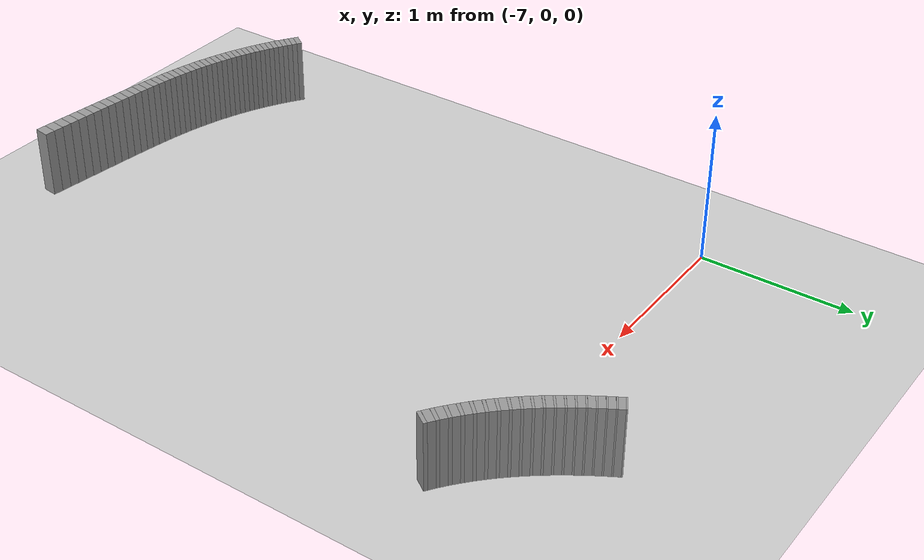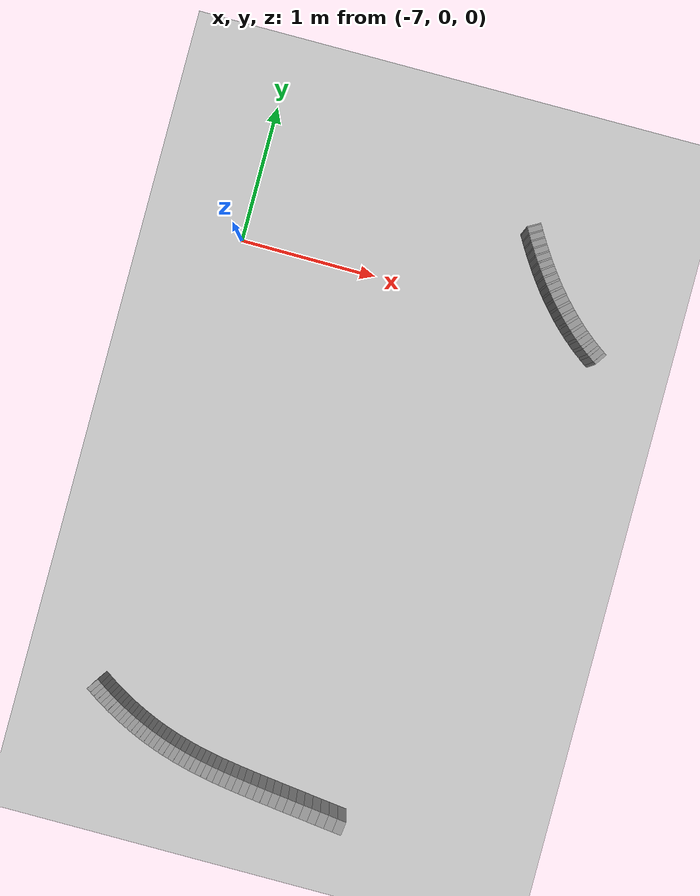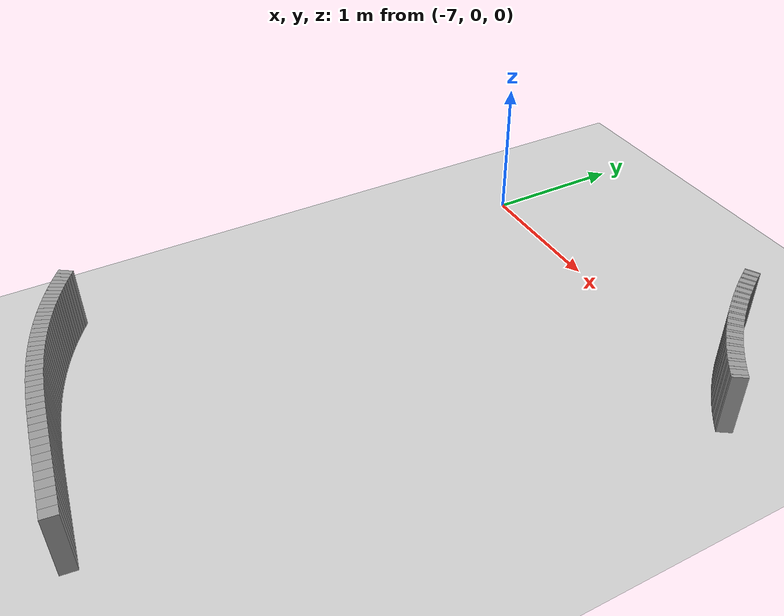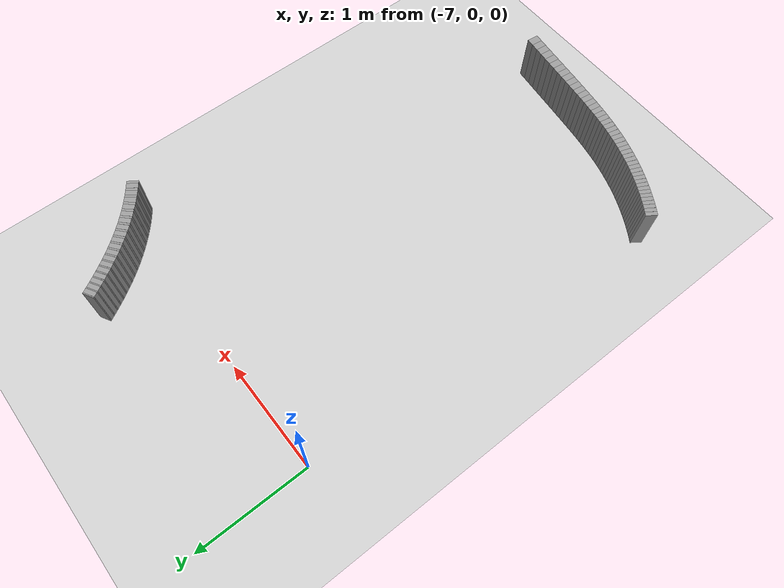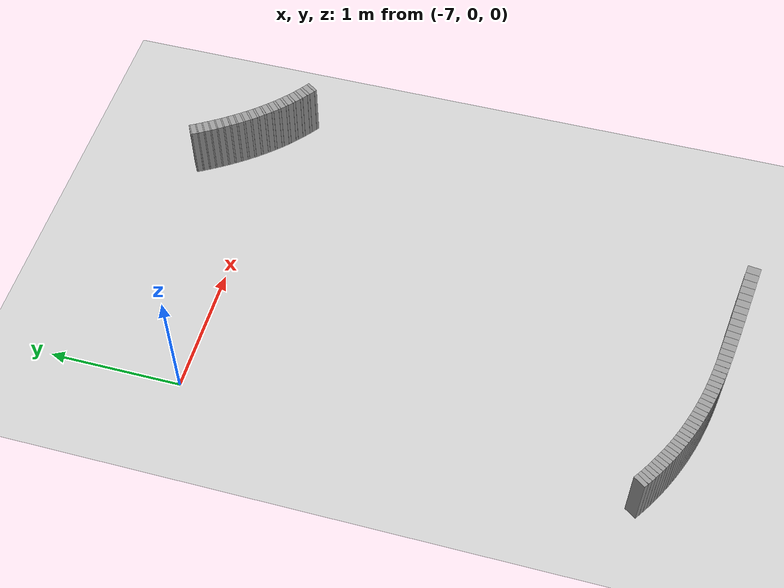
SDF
<sdf version="1.6">
 <world name="default">
  <include><uri>model://ground_plane</uri></include>
  <include><uri>model://sun</uri></include>
  <model name="wall_85_outward">
   <static>true</static>
   <link name="link">
    <collision name="collision">
     <geometry><box><size>0.023241666667469324 0.1 0.45</size></box></geometry>
    </collision>
    <visual name="visual">
     <geometry><box><size>0.023241666667469324 0.1 0.45</size></box></geometry>
     <material>
      <script><uri>file://media/materials/scripts/gazebo.material</uri><name>Gazebo/Gray</name></script>
     </material>
    </visual>
   </link>
   <pose>-4.325595800534499 -0.19284814521639576 0.225 0 0 2.548515227415712</pose>
  </model>
  <model name="wall_86_outward">
   <static>true</static>
   <link name="link">
    <collision name="collision">
     <geometry><box><size>0.04576433966683332 0.1 0.45</size></box></geometry>
    </collision>
    <visual name="visual">
     <geometry><box><size>0.04576433966683332 0.1 0.45</size></box></geometry>
     <material>
      <script><uri>file://media/materials/scripts/gazebo.material</uri><name>Gazebo/Gray</name></script>
     </material>
    </visual>
   </link>
   <pose>-4.353955277947944 -0.17319878109186024 0.225 0 0 2.529145960759117</pose>
  </model>
  <model name="wall_87_outward">
   <static>true</static>
   <link name="link">
    <collision name="collision">
     <geometry><box><size>0.022731138609609344 0.1 0.45</size></box></geometry>
    </collision>
    <visual name="visual">
     <geometry><box><size>0.022731138609609344 0.1 0.45</size></box></geometry>
     <material>
      <script><uri>file://media/materials/scripts/gazebo.material</uri><name>Gazebo/Gray</name></script>
     </material>
    </visual>
   </link>
   <pose>-4.38185284806236 -0.15333575285338413 0.225 0 0 2.5102022122281324</pose>
  </model>
  <model name="wall_88_outward">
   <static>true</static>
   <link name="link">
    <collision name="collision">
     <geometry><box><size>0.04527786720698775 0.1 0.45</size></box></geometry>
    </collision>
    <visual name="visual">
     <geometry><box><size>0.04527786720698775 0.1 0.45</size></box></geometry>
     <material>
      <script><uri>file://media/materials/scripts/gazebo.material</uri><name>Gazebo/Gray</name></script>
     </material>
    </visual>
   </link>
   <pose>-4.409045130077611 -0.13292022734175252 0.225 0 0 2.491258463697148</pose>
  </model>
  <model name="wall_89_outward">
   <static>true</static>
   <link name="link">
    <collision name="collision">
     <geometry><box><size>0.022048548580511543 0.1 0.45</size></box></geometry>
    </collision>
    <visual name="visual">
     <geometry><box><size>0.022048548580511543 0.1 0.45</size></box></geometry>
     <material>
      <script><uri>file://media/materials/scripts/gazebo.material</uri><name>Gazebo/Gray</name></script>
     </material>
    </visual>
   </link>
   <pose>-4.435712934489321 -0.11237867165751814 0.225 0 0 2.472883639236073</pose>
  </model>
  <model name="wall_90_outward">
   <static>true</static>
   <link name="link">
    <collision name="collision">
     <geometry><box><size>0.04482548283133406 0.1 0.45</size></box></geometry>
    </collision>
    <visual name="visual">
     <geometry><box><size>0.04482548283133406 0.1 0.45</size></box></geometry>
     <material>
      <script><uri>file://media/materials/scripts/gazebo.material</uri><name>Gazebo/Gray</name></script>
     </material>
    </visual>
   </link>
   <pose>-4.461690097793536 -0.09132783831870048 0.225 0 0 2.45450881477498</pose>
  </model>
  <model name="wall_91_outward">
   <static>true</static>
   <link name="link">
    <collision name="collision">
     <geometry><box><size>0.02123689167539869 0.1 0.45</size></box></geometry>
    </collision>
    <visual name="visual">
     <geometry><box><size>0.02123689167539869 0.1 0.45</size></box></geometry>
     <material>
      <script><uri>file://media/materials/scripts/gazebo.material</uri><name>Gazebo/Gray</name></script>
     </material>
    </visual>
   </link>
   <pose>-4.48710599499292 -0.07023241328174237 0.225 0 0 2.4368104811154376</pose>
  </model>
  <model name="wall_92_outward">
   <static>true</static>
   <link name="link">
    <collision name="collision">
     <geometry><box><size>0.04439943277898339 0.1 0.45</size></box></geometry>
    </collision>
    <visual name="visual">
     <geometry><box><size>0.04439943277898339 0.1 0.45</size></box></geometry>
     <material>
      <script><uri>file://media/materials/scripts/gazebo.material</uri><name>Gazebo/Gray</name></script>
     </material>
    </visual>
   </link>
   <pose>-4.511848137339372 -0.04867355595675707 0.225 0 0 2.419112147455921</pose>
  </model>
  <model name="wall_93_outward">
   <static>true</static>
   <link name="link">
    <collision name="collision">
     <geometry><box><size>0.020312099191398782 0.1 0.45</size></box></geometry>
    </collision>
    <visual name="visual">
     <geometry><box><size>0.020312099191398782 0.1 0.45</size></box></geometry>
     <material>
      <script><uri>file://media/materials/scripts/gazebo.material</uri><name>Gazebo/Gray</name></script>
     </material>
    </visual>
   </link>
   <pose>-4.536005625602225 -0.027150388191595293 0.225 0 0 2.40218458973138</pose>
  </model>
  <model name="wall_94_outward">
   <static>true</static>
   <link name="link">
    <collision name="collision">
     <geometry><box><size>0.043996923994402394 0.1 0.45</size></box></geometry>
    </collision>
    <visual name="visual">
     <geometry><box><size>0.043996923994402394 0.1 0.45</size></box></geometry>
     <material>
      <script><uri>file://media/materials/scripts/gazebo.material</uri><name>Gazebo/Gray</name></script>
     </material>
    </visual>
   </link>
   <pose>-4.559510305925098 -0.0052100463143549824 0.225 0 0 2.3852570320068183</pose>
  </model>
  <model name="wall_95_outward">
   <static>true</static>
   <link name="link">
    <collision name="collision">
     <geometry><box><size>0.019325154894788227 0.1 0.45</size></box></geometry>
    </collision>
    <visual name="visual">
     <geometry><box><size>0.019325154894788227 0.1 0.45</size></box></geometry>
     <material>
      <script><uri>file://media/materials/scripts/gazebo.material</uri><name>Gazebo/Gray</name></script>
     </material>
    </visual>
   </link>
   <pose>-4.582431440726968 0.016630005585092394 0.225 0 0 2.3691520400761816</pose>
  </model>
  <model name="wall_96_outward">
   <static>true</static>
   <link name="link">
    <collision name="collision">
     <geometry><box><size>0.04361838156934606 0.1 0.45</size></box></geometry>
    </collision>
    <visual name="visual">
     <geometry><box><size>0.04361838156934606 0.1 0.45</size></box></geometry>
     <material>
      <script><uri>file://media/materials/scripts/gazebo.material</uri><name>Gazebo/Gray</name></script>
     </material>
    </visual>
   </link>
   <pose>-4.604724683181958 0.038843264681839657 0.225 0 0 2.3530470481455357</pose>
  </model>
  <model name="wall_97_outward">
   <static>true</static>
   <link name="link">
    <collision name="collision">
     <geometry><box><size>0.018272271444684445 0.1 0.45</size></box></geometry>
    </collision>
    <visual name="visual">
     <geometry><box><size>0.018272271444684445 0.1 0.45</size></box></geometry>
     <material>
      <script><uri>file://media/materials/scripts/gazebo.material</uri><name>Gazebo/Gray</name></script>
     </material>
    </visual>
   </link>
   <pose>-4.6264379290394775 0.06089098533769283 0.225 0 0 2.33781956680005</pose>
  </model>
  <model name="wall_98_outward">
   <static>true</static>
   <link name="link">
    <collision name="collision">
     <geometry><box><size>0.043267030937911295 0.1 0.45</size></box></geometry>
    </collision>
    <visual name="visual">
     <geometry><box><size>0.043267030937911295 0.1 0.45</size></box></geometry>
     <material>
      <script><uri>file://media/materials/scripts/gazebo.material</uri><name>Gazebo/Gray</name></script>
     </material>
    </visual>
   </link>
   <pose>-4.647553006488624 0.08327131397837778 0.225 0 0 2.3225920854545965</pose>
  </model>
  <model name="wall_99_outward">
   <static>true</static>
   <link name="link">
    <collision name="collision">
     <geometry><box><size>0.01719550772552241 0.1 0.45</size></box></geometry>
    </collision>
    <visual name="visual">
     <geometry><box><size>0.01719550772552241 0.1 0.45</size></box></geometry>
     <material>
      <script><uri>file://media/materials/scripts/gazebo.material</uri><name>Gazebo/Gray</name></script>
     </material>
    </visual>
   </link>
   <pose>-4.668108902480096 0.10543765311678435 0.225 0 0 2.308262005238525</pose>
  </model>
  <model name="wall_100_outward">
   <static>true</static>
   <link name="link">
    <collision name="collision">
     <geometry><box><size>0.04294727232576397 0.1 0.45</size></box></geometry>
    </collision>
    <visual name="visual">
     <geometry><box><size>0.04294727232576397 0.1 0.45</size></box></geometry>
     <material>
      <script><uri>file://media/materials/scripts/gazebo.material</uri><name>Gazebo/Gray</name></script>
     </material>
    </visual>
   </link>
   <pose>-4.68810009248911 0.12790102124744768 0.225 0 0 2.293931925022413</pose>
  </model>
  <model name="wall_101_outward">
   <static>true</static>
   <link name="link">
    <collision name="collision">
     <geometry><box><size>0.016104596266052384 0.1 0.45</size></box></geometry>
    </collision>
    <visual name="visual">
     <geometry><box><size>0.016104596266052384 0.1 0.45</size></box></geometry>
     <material>
      <script><uri>file://media/materials/scripts/gazebo.material</uri><name>Gazebo/Gray</name></script>
     </material>
    </visual>
   </link>
   <pose>-4.707557047876319 0.1501085996509454 0.225 0 0 2.2805110252410294</pose>
  </model>
  <model name="wall_102_outward">
   <static>true</static>
   <link name="link">
    <collision name="collision">
     <geometry><box><size>0.042664129510173024 0.1 0.45</size></box></geometry>
    </collision>
    <visual name="visual">
     <geometry><box><size>0.042664129510173024 0.1 0.45</size></box></geometry>
     <material>
      <script><uri>file://media/materials/scripts/gazebo.material</uri><name>Gazebo/Gray</name></script>
     </material>
    </visual>
   </link>
   <pose>-4.726485995354147 0.17258313614211535 0.225 0 0 2.267090125459629</pose>
  </model>
  <model name="wall_103_outward">
   <static>true</static>
   <link name="link">
    <collision name="collision">
     <geometry><box><size>0.015017628042403948 0.1 0.45</size></box></geometry>
    </collision>
    <visual name="visual">
     <geometry><box><size>0.015017628042403948 0.1 0.45</size></box></geometry>
     <material>
      <script><uri>file://media/materials/scripts/gazebo.material</uri><name>Gazebo/Gray</name></script>
     </material>
    </visual>
   </link>
   <pose>-4.744911444492326 0.19477038529361335 0.225 0 0 2.2545751087314128</pose>
  </model>
  <model name="wall_104_outward">
   <static>true</static>
   <link name="link">
    <collision name="collision">
     <geometry><box><size>0.042421082429976255 0.1 0.45</size></box></geometry>
    </collision>
    <visual name="visual">
     <geometry><box><size>0.042421082429976255 0.1 0.45</size></box></geometry>
     <material>
      <script><uri>file://media/materials/scripts/gazebo.material</uri><name>Gazebo/Gray</name></script>
     </material>
    </visual>
   </link>
   <pose>-4.762847412387586 0.2171997739617651 0.225 0 0 2.242060092003222</pose>
  </model>
  <model name="wall_105_outward">
   <static>true</static>
   <link name="link">
    <collision name="collision">
     <geometry><box><size>0.013958119077425536 0.1 0.45</size></box></geometry>
    </collision>
    <visual name="visual">
     <geometry><box><size>0.013958119077425536 0.1 0.45</size></box></geometry>
     <material>
      <script><uri>file://media/materials/scripts/gazebo.material</uri><name>Gazebo/Gray</name></script>
     </material>
    </visual>
   </link>
   <pose>-4.780316809530294 0.23932337505508428 0.225 0 0 2.230428063797006</pose>
  </model>
  <model name="wall_106_outward">
   <static>true</static>
   <link name="link">
    <collision name="collision">
     <geometry><box><size>0.04221867006663946 0.1 0.45</size></box></geometry>
    </collision>
    <visual name="visual">
     <geometry><box><size>0.04221867006663946 0.1 0.45</size></box></geometry>
     <material>
      <script><uri>file://media/materials/scripts/gazebo.material</uri><name>Gazebo/Gray</name></script>
     </material>
    </visual>
   </link>
   <pose>-4.797335200440296 0.26166867315667397 0.225 0 0 2.2187960355907697</pose>
  </model>
  <model name="wall_107_outward">
   <static>true</static>
   <link name="link">
    <collision name="collision">
     <geometry><box><size>0.012955485484594572 0.1 0.45</size></box></geometry>
    </collision>
    <visual name="visual">
     <geometry><box><size>0.012955485484594572 0.1 0.45</size></box></geometry>
     <material>
      <script><uri>file://media/materials/scripts/gazebo.material</uri><name>Gazebo/Gray</name></script>
     </material>
    </visual>
   </link>
   <pose>-4.813930575122631 0.2837055617878844 0.225 0 0 2.207999587943256</pose>
  </model>
  <model name="wall_108_outward">
   <static>true</static>
   <link name="link">
    <collision name="collision">
     <geometry><box><size>0.04205398593836675 0.1 0.45</size></box></geometry>
    </collision>
    <visual name="visual">
     <geometry><box><size>0.04205398593836675 0.1 0.45</size></box></geometry>
     <material>
      <script><uri>file://media/materials/scripts/gazebo.material</uri><name>Gazebo/Gray</name></script>
     </material>
    </visual>
   </link>
   <pose>-4.830111320445539 0.3059469216995522 0.225 0 0 2.1972031402957666</pose>
  </model>
  <model name="wall_109_outward">
   <static>true</static>
   <link name="link">
    <collision name="collision">
     <geometry><box><size>0.012006763290798144 0.1 0.45</size></box></geometry>
    </collision>
    <visual name="visual">
     <geometry><box><size>0.012006763290798144 0.1 0.45</size></box></geometry>
     <material>
      <script><uri>file://media/materials/scripts/gazebo.material</uri><name>Gazebo/Gray</name></script>
     </material>
    </visual>
   </link>
   <pose>-4.845908702174169 0.3278802580729522 0.225 0 0 2.187197337263958</pose>
  </model>
  <model name="wall_110_outward">
   <static>true</static>
   <link name="link">
    <collision name="collision">
     <geometry><box><size>0.04192180013992647 0.1 0.45</size></box></geometry>
    </collision>
    <visual name="visual">
     <geometry><box><size>0.04192180013992647 0.1 0.45</size></box></geometry>
     <material>
      <script><uri>file://media/materials/scripts/gazebo.material</uri><name>Gazebo/Gray</name></script>
     </material>
    </visual>
   </link>
   <pose>-4.861325078039114 0.35000253746464594 0.225 0 0 2.1771915342321346</pose>
  </model>
  <model name="wall_111_outward">
   <static>true</static>
   <link name="link">
    <collision name="collision">
     <geometry><box><size>0.011196452859899985 0.1 0.45</size></box></geometry>
    </collision>
    <visual name="visual">
     <geometry><box><size>0.011196452859899985 0.1 0.45</size></box></geometry>
     <material>
      <script><uri>file://media/materials/scripts/gazebo.material</uri><name>Gazebo/Gray</name></script>
     </material>
    </visual>
   </link>
   <pose>-4.876418305873475 0.3718559458549955 0.225 0 0 2.167861021466107</pose>
  </model>
  <model name="wall_112_outward">
   <static>true</static>
   <link name="link">
    <collision name="collision">
     <geometry><box><size>0.04181070073090417 0.1 0.45</size></box></geometry>
    </collision>
    <visual name="visual">
     <geometry><box><size>0.04181070073090417 0.1 0.45</size></box></geometry>
     <material>
      <script><uri>file://media/materials/scripts/gazebo.material</uri><name>Gazebo/Gray</name></script>
     </material>
    </visual>
   </link>
   <pose>-4.891157258887522 0.3938830350492057 0.225 0 0 2.158530508700096</pose>
  </model>
  <model name="wall_113_outward">
   <static>true</static>
   <link name="link">
    <collision name="collision">
     <geometry><box><size>0.010483047914412078 0.1 0.45</size></box></geometry>
    </collision>
    <visual name="visual">
     <geometry><box><size>0.010483047914412078 0.1 0.45</size></box></geometry>
     <material>
      <script><uri>file://media/materials/scripts/gazebo.material</uri><name>Gazebo/Gray</name></script>
     </material>
    </visual>
   </link>
   <pose>-4.90561687832379 0.4156676644953643 0.225 0 0 2.149794524320525</pose>
  </model>
  <model name="wall_114_outward">
   <static>true</static>
   <link name="link">
    <collision name="collision">
     <geometry><box><size>0.0417095366337069 0.1 0.45</size></box></geometry>
    </collision>
    <visual name="visual">
     <geometry><box><size>0.0417095366337069 0.1 0.45</size></box></geometry>
     <material>
      <script><uri>file://media/materials/scripts/gazebo.material</uri><name>Gazebo/Gray</name></script>
     </material>
    </visual>
   </link>
   <pose>-4.919743470047587 0.43760957723011074 0.225 0 0 2.141058539940985</pose>
  </model>
  <model name="wall_115_outward">
   <static>true</static>
   <link name="link">
    <collision name="collision">
     <geometry><box><size>0.00992310212625172 0.1 0.45</size></box></geometry>
    </collision>
    <visual name="visual">
     <geometry><box><size>0.00992310212625172 0.1 0.45</size></box></geometry>
     <material>
      <script><uri>file://media/materials/scripts/gazebo.material</uri><name>Gazebo/Gray</name></script>
     </material>
    </visual>
   </link>
   <pose>-4.933645854480463 0.4593627144249879 0.225 0 0 2.1327891939235557</pose>
  </model>
  <model name="wall_116_outward">
   <static>true</static>
   <link name="link">
    <collision name="collision">
     <geometry><box><size>0.041603631371572004 0.1 0.45</size></box></geometry>
    </collision>
    <visual name="visual">
     <geometry><box><size>0.041603631371572004 0.1 0.45</size></box></geometry>
     <material>
      <script><uri>file://media/materials/scripts/gazebo.material</uri><name>Gazebo/Gray</name></script>
     </material>
    </visual>
   </link>
   <pose>-4.947228535111419 0.4812546032309274 0.225 0 0 2.124519847906173</pose>
  </model>
  <model name="wall_117_outward">
   <static>true</static>
   <link name="link">
    <collision name="collision">
     <geometry><box><size>0.00947277509013063 0.1 0.45</size></box></geometry>
    </collision>
    <visual name="visual">
     <geometry><box><size>0.00947277509013063 0.1 0.45</size></box></geometry>
     <material>
      <script><uri>file://media/materials/scripts/gazebo.material</uri><name>Gazebo/Gray</name></script>
     </material>
    </visual>
   </link>
   <pose>-4.9606261237540235 0.5029962292769051 0.225 0 0 2.1166257866767073</pose>
  </model>
  <model name="wall_118_outward">
   <static>true</static>
   <link name="link">
    <collision name="collision">
     <geometry><box><size>0.04148089730003498 0.1 0.45</size></box></geometry>
    </collision>
    <visual name="visual">
     <geometry><box><size>0.04148089730003498 0.1 0.45</size></box></geometry>
     <material>
      <script><uri>file://media/materials/scripts/gazebo.material</uri><name>Gazebo/Gray</name></script>
     </material>
    </visual>
   </link>
   <pose>-4.973711572083412 0.5248556460793241 0.225 0 0 2.1087317254471585</pose>
  </model>
  <model name="wall_119_outward">
   <static>true</static>
   <link name="link">
    <collision name="collision">
     <geometry><box><size>0.009156902478422097 0.1 0.45</size></box></geometry>
    </collision>
    <visual name="visual">
     <geometry><box><size>0.009156902478422097 0.1 0.45</size></box></geometry>
     <material>
      <script><uri>file://media/materials/scripts/gazebo.material</uri><name>Gazebo/Gray</name></script>
     </material>
    </visual>
   </link>
   <pose>-4.986653995584743 0.5466165016717932 0.225 0 0 2.101100899325521</pose>
  </model>
  <model name="wall_120_outward">
   <static>true</static>
   <link name="link">
    <collision name="collision">
     <geometry><box><size>0.04133039156685017 0.1 0.45</size></box></geometry>
    </collision>
    <visual name="visual">
     <geometry><box><size>0.04133039156685017 0.1 0.45</size></box></geometry>
     <material>
      <script><uri>file://media/materials/scripts/gazebo.material</uri><name>Gazebo/Gray</name></script>
     </material>
    </visual>
   </link>
   <pose>-4.999285796999168 0.5684722514575057 0.225 0 0 2.0934700732038074</pose>
  </model>
  <model name="wall_121_outward">
   <static>true</static>
   <link name="link">
    <collision name="collision">
     <geometry><box><size>0.008976549760495186 0.1 0.45</size></box></geometry>
    </collision>
    <visual name="visual">
     <geometry><box><size>0.008976549760495186 0.1 0.45</size></box></geometry>
     <material>
      <script><uri>file://media/materials/scripts/gazebo.material</uri><name>Gazebo/Gray</name></script>
     </material>
    </visual>
   </link>
   <pose>-5.011813222092103 0.590284072032617 0.225 0 0 2.085989545303956</pose>
  </model>
  <model name="wall_437_outward">
   <static>true</static>
   <link name="link">
    <collision name="collision">
     <geometry><box><size>0.03557451327527124 0.1 0.45</size></box></geometry>
    </collision>
    <visual name="visual">
     <geometry><box><size>0.03557451327527124 0.1 0.45</size></box></geometry>
     <material>
      <script><uri>file://media/materials/scripts/gazebo.material</uri><name>Gazebo/Gray</name></script>
     </material>
    </visual>
   </link>
   <pose>-7.152987085366249 -3.3226378796927407 0.225 0 0 -0.6093446837335494</pose>
  </model>
  <model name="wall_438_outward">
   <static>true</static>
   <link name="link">
    <collision name="collision">
     <geometry><box><size>0.03511657692729719 0.1 0.45</size></box></geometry>
    </collision>
    <visual name="visual">
     <geometry><box><size>0.03511657692729719 0.1 0.45</size></box></geometry>
     <material>
      <script><uri>file://media/materials/scripts/gazebo.material</uri><name>Gazebo/Gray</name></script>
     </material>
    </visual>
   </link>
   <pose>-7.123845217092087 -3.342637389073186 0.225 0 0 -0.5934706681243386</pose>
  </model>
  <model name="wall_439_outward">
   <static>true</static>
   <link name="link">
    <collision name="collision">
     <geometry><box><size>0.03479234172275988 0.1 0.45</size></box></geometry>
    </collision>
    <visual name="visual">
     <geometry><box><size>0.03479234172275988 0.1 0.45</size></box></geometry>
     <material>
      <script><uri>file://media/materials/scripts/gazebo.material</uri><name>Gazebo/Gray</name></script>
     </material>
    </visual>
   </link>
   <pose>-7.094716680788393 -3.361957511797396 0.225 0 0 -0.5777530202258825</pose>
  </model>
  <model name="wall_440_outward">
   <static>true</static>
   <link name="link">
    <collision name="collision">
     <geometry><box><size>0.03460016011434532 0.1 0.45</size></box></geometry>
    </collision>
    <visual name="visual">
     <geometry><box><size>0.03460016011434532 0.1 0.45</size></box></geometry>
     <material>
      <script><uri>file://media/materials/scripts/gazebo.material</uri><name>Gazebo/Gray</name></script>
     </material>
    </visual>
   </link>
   <pose>-7.065506604713343 -3.380679914632452 0.225 0 0 -0.5621874997320973</pose>
  </model>
  <model name="wall_441_outward">
   <static>true</static>
   <link name="link">
    <collision name="collision">
     <geometry><box><size>0.034518348049169686 0.1 0.45</size></box></geometry>
    </collision>
    <visual name="visual">
     <geometry><box><size>0.034518348049169686 0.1 0.45</size></box></geometry>
     <material>
      <script><uri>file://media/materials/scripts/gazebo.material</uri><name>Gazebo/Gray</name></script>
     </material>
    </visual>
   </link>
   <pose>-7.036126305487903 -3.3988752207684767 0.225 0 0 -0.5467784021693682</pose>
  </model>
  <model name="wall_442_outward">
   <static>true</static>
   <link name="link">
    <collision name="collision">
     <geometry><box><size>0.03454179627247449 0.1 0.45</size></box></geometry>
    </collision>
    <visual name="visual">
     <geometry><box><size>0.03454179627247449 0.1 0.45</size></box></geometry>
     <material>
      <script><uri>file://media/materials/scripts/gazebo.material</uri><name>Gazebo/Gray</name></script>
     </material>
    </visual>
   </link>
   <pose>-7.006494504576237 -3.416601248143607 0.225 0 0 -0.5314307688380614</pose>
  </model>
  <model name="wall_443_outward">
   <static>true</static>
   <link name="link">
    <collision name="collision">
     <geometry><box><size>0.0346678725698493 0.1 0.45</size></box></geometry>
    </collision>
    <visual name="visual">
     <geometry><box><size>0.0346678725698493 0.1 0.45</size></box></geometry>
     <material>
      <script><uri>file://media/materials/scripts/gazebo.material</uri><name>Gazebo/Gray</name></script>
     </material>
    </visual>
   </link>
   <pose>-6.976529581883579 -3.4339081210425273 0.225 0 0 -0.5161258546249187</pose>
  </model>
  <model name="wall_444_outward">
   <static>true</static>
   <link name="link">
    <collision name="collision">
     <geometry><box><size>0.03487303495635781 0.1 0.45</size></box></geometry>
    </collision>
    <visual name="visual">
     <geometry><box><size>0.03487303495635781 0.1 0.45</size></box></geometry>
     <material>
      <script><uri>file://media/materials/scripts/gazebo.material</uri><name>Gazebo/Gray</name></script>
     </material>
    </visual>
   </link>
   <pose>-6.946158032919465 -3.4508339051370838 0.225 0 0 -0.5007664561825994</pose>
  </model>
  <model name="wall_445_outward">
   <static>true</static>
   <link name="link">
    <collision name="collision">
     <geometry><box><size>0.035163178924522843 0.1 0.45</size></box></geometry>
    </collision>
    <visual name="visual">
     <geometry><box><size>0.035163178924522843 0.1 0.45</size></box></geometry>
     <material>
      <script><uri>file://media/materials/scripts/gazebo.material</uri><name>Gazebo/Gray</name></script>
     </material>
    </visual>
   </link>
   <pose>-6.915310732236195 -3.4674061196891865 0.225 0 0 -0.48527602290022215</pose>
  </model>
  <model name="wall_446_outward">
   <static>true</static>
   <link name="link">
    <collision name="collision">
     <geometry><box><size>0.03553041948161392 0.1 0.45</size></box></geometry>
    </collision>
    <visual name="visual">
     <geometry><box><size>0.03553041948161392 0.1 0.45</size></box></geometry>
     <material>
      <script><uri>file://media/materials/scripts/gazebo.material</uri><name>Gazebo/Gray</name></script>
     </material>
    </visual>
   </link>
   <pose>-6.883916947633066 -3.483646495959433 0.225 0 0 -0.46960730326659605</pose>
  </model>
  <model name="wall_447_outward">
   <static>true</static>
   <link name="link">
    <collision name="collision">
     <geometry><box><size>0.03597461179008756 0.1 0.45</size></box></geometry>
    </collision>
    <visual name="visual">
     <geometry><box><size>0.03597461179008756 0.1 0.45</size></box></geometry>
     <material>
      <script><uri>file://media/materials/scripts/gazebo.material</uri><name>Gazebo/Gray</name></script>
     </material>
    </visual>
   </link>
   <pose>-6.851907417897302 -3.499569800637641 0.225 0 0 -0.45371072667881085</pose>
  </model>
  <model name="wall_448_outward">
   <static>true</static>
   <link name="link">
    <collision name="collision">
     <geometry><box><size>0.03648112863849419 0.1 0.45</size></box></geometry>
    </collision>
    <visual name="visual">
     <geometry><box><size>0.03648112863849419 0.1 0.45</size></box></geometry>
     <material>
      <script><uri>file://media/materials/scripts/gazebo.material</uri><name>Gazebo/Gray</name></script>
     </material>
    </visual>
   </link>
   <pose>-6.819218135672525 -3.515183391220992 0.225 0 0 -0.4375963087165765</pose>
  </model>
  <model name="wall_449_outward">
   <static>true</static>
   <link name="link">
    <collision name="collision">
     <geometry><box><size>0.03704505293296995 0.1 0.45</size></box></geometry>
    </collision>
    <visual name="visual">
     <geometry><box><size>0.03704505293296995 0.1 0.45</size></box></geometry>
     <material>
      <script><uri>file://media/materials/scripts/gazebo.material</uri><name>Gazebo/Gray</name></script>
     </material>
    </visual>
   </link>
   <pose>-6.785792978426463 -3.5304867667405944 0.225 0 0 -0.4212382566902742</pose>
  </model>
  <model name="wall_450_outward">
   <static>true</static>
   <link name="link">
    <collision name="collision">
     <geometry><box><size>0.03766014742239982 0.1 0.45</size></box></geometry>
    </collision>
    <visual name="visual">
     <geometry><box><size>0.03766014742239982 0.1 0.45</size></box></geometry>
     <material>
      <script><uri>file://media/materials/scripts/gazebo.material</uri><name>Gazebo/Gray</name></script>
     </material>
    </visual>
   </link>
   <pose>-6.751580681109375 -3.545474766080588 0.225 0 0 -0.40470572724147247</pose>
  </model>
  <model name="wall_451_outward">
   <static>true</static>
   <link name="link">
    <collision name="collision">
     <geometry><box><size>0.038293772726418034 0.1 0.45</size></box></geometry>
    </collision>
    <visual name="visual">
     <geometry><box><size>0.038293772726418034 0.1 0.45</size></box></geometry>
     <material>
      <script><uri>file://media/materials/scripts/gazebo.material</uri><name>Gazebo/Gray</name></script>
     </material>
    </visual>
   </link>
   <pose>-6.716548352229093 -3.5601337313936914 0.225 0 0 -0.3880375012621298</pose>
  </model>
  <model name="wall_452_outward">
   <static>true</static>
   <link name="link">
    <collision name="collision">
     <geometry><box><size>0.03892991125827229 0.1 0.45</size></box></geometry>
    </collision>
    <visual name="visual">
     <geometry><box><size>0.03892991125827229 0.1 0.45</size></box></geometry>
     <material>
      <script><uri>file://media/materials/scripts/gazebo.material</uri><name>Gazebo/Gray</name></script>
     </material>
    </visual>
   </link>
   <pose>-6.68068624020449 -3.5744403217365424 0.225 0 0 -0.3712735202347097</pose>
  </model>
  <model name="wall_453_outward">
   <static>true</static>
   <link name="link">
    <collision name="collision">
     <geometry><box><size>0.039548976432945034 0.1 0.45</size></box></geometry>
    </collision>
    <visual name="visual">
     <geometry><box><size>0.039548976432945034 0.1 0.45</size></box></geometry>
     <material>
      <script><uri>file://media/materials/scripts/gazebo.material</uri><name>Gazebo/Gray</name></script>
     </material>
    </visual>
   </link>
   <pose>-6.64400239833291 -3.5883658751150866 0.225 0 0 -0.35447138288890445</pose>
  </model>
  <model name="wall_454_outward">
   <static>true</static>
   <link name="link">
    <collision name="collision">
     <geometry><box><size>0.04012413548817602 0.1 0.45</size></box></geometry>
    </collision>
    <visual name="visual">
     <geometry><box><size>0.04012413548817602 0.1 0.45</size></box></geometry>
     <material>
      <script><uri>file://media/materials/scripts/gazebo.material</uri><name>Gazebo/Gray</name></script>
     </material>
    </visual>
   </link>
   <pose>-6.606528141503619 -3.60187584470002 0.225 0 0 -0.33766981509149047</pose>
  </model>
  <model name="wall_455_outward">
   <static>true</static>
   <link name="link">
    <collision name="collision">
     <geometry><box><size>0.04064610310538129 0.1 0.45</size></box></geometry>
    </collision>
    <visual name="visual">
     <geometry><box><size>0.04064610310538129 0.1 0.45</size></box></geometry>
     <material>
      <script><uri>file://media/materials/scripts/gazebo.material</uri><name>Gazebo/Gray</name></script>
     </material>
    </visual>
   </link>
   <pose>-6.568313287282332 -3.6149321797727785 0.225 0 0 -0.3208830291041723</pose>
  </model>
  <model name="wall_456_outward">
   <static>true</static>
   <link name="link">
    <collision name="collision">
     <geometry><box><size>0.041113123695740744 0.1 0.45</size></box></geometry>
    </collision>
    <visual name="visual">
     <geometry><box><size>0.041113123695740744 0.1 0.45</size></box></geometry>
     <material>
      <script><uri>file://media/materials/scripts/gazebo.material</uri><name>Gazebo/Gray</name></script>
     </material>
    </visual>
   </link>
   <pose>-6.529414519630558 -3.6274984712665406 0.225 0 0 -0.30414899907005033</pose>
  </model>
  <model name="wall_457_outward">
   <static>true</static>
   <link name="link">
    <collision name="collision">
     <geometry><box><size>0.041534313276063294 0.1 0.45</size></box></geometry>
    </collision>
    <visual name="visual">
     <geometry><box><size>0.041534313276063294 0.1 0.45</size></box></geometry>
     <material>
      <script><uri>file://media/materials/scripts/gazebo.material</uri><name>Gazebo/Gray</name></script>
     </material>
    </visual>
   </link>
   <pose>-6.489886572200181 -3.6395430759978176 0.225 0 0 -0.2874825186252228</pose>
  </model>
  <model name="wall_458_outward">
   <static>true</static>
   <link name="link">
    <collision name="collision">
     <geometry><box><size>0.041939721244895256 0.1 0.45</size></box></geometry>
    </collision>
    <visual name="visual">
     <geometry><box><size>0.041939721244895256 0.1 0.45</size></box></geometry>
     <material>
      <script><uri>file://media/materials/scripts/gazebo.material</uri><name>Gazebo/Gray</name></script>
     </material>
    </visual>
   </link>
   <pose>-6.449766793113051 -3.6510436291408146 0.225 0 0 -0.27093698238174907</pose>
  </model>
  <model name="wall_459_outward">
   <static>true</static>
   <link name="link">
    <collision name="collision">
     <geometry><box><size>0.042357203950153646 0.1 0.45</size></box></geometry>
    </collision>
    <visual name="visual">
     <geometry><box><size>0.042357203950153646 0.1 0.45</size></box></geometry>
     <material>
      <script><uri>file://media/materials/scripts/gazebo.material</uri><name>Gazebo/Gray</name></script>
     </material>
    </visual>
   </link>
   <pose>-6.409065968118683 -3.661989728874091 0.225 0 0 -0.25459206738965934</pose>
  </model>
  <model name="wall_460_outward">
   <static>true</static>
   <link name="link">
    <collision name="collision">
     <geometry><box><size>0.042828816218660214 0.1 0.45</size></box></geometry>
    </collision>
    <visual name="visual">
     <geometry><box><size>0.042828816218660214 0.1 0.45</size></box></geometry>
     <material>
      <script><uri>file://media/materials/scripts/gazebo.material</uri><name>Gazebo/Gray</name></script>
     </material>
    </visual>
   </link>
   <pose>-6.367762001724438 -3.672383478118805 0.225 0 0 -0.23854086172473798</pose>
  </model>
  <model name="wall_461_outward">
   <static>true</static>
   <link name="link">
    <collision name="collision">
     <geometry><box><size>0.04339935314040433 0.1 0.45</size></box></geometry>
    </collision>
    <visual name="visual">
     <geometry><box><size>0.04339935314040433 0.1 0.45</size></box></geometry>
     <material>
      <script><uri>file://media/materials/scripts/gazebo.material</uri><name>Gazebo/Gray</name></script>
     </material>
    </visual>
   </link>
   <pose>-6.325791301476911 -3.682241036417917 0.225 0 0 -0.2229353969654592</pose>
  </model>
  <model name="wall_462_outward">
   <static>true</static>
   <link name="link">
    <collision name="collision">
     <geometry><box><size>0.04410667412429673 0.1 0.45</size></box></geometry>
    </collision>
    <visual name="visual">
     <geometry><box><size>0.04410667412429673 0.1 0.45</size></box></geometry>
     <material>
      <script><uri>file://media/materials/scripts/gazebo.material</uri><name>Gazebo/Gray</name></script>
     </material>
    </visual>
   </link>
   <pose>-6.283050434741888 -3.6915918186721317 0.225 0 0 -0.20795546536004159</pose>
  </model>
  <model name="wall_463_outward">
   <static>true</static>
   <link name="link">
    <collision name="collision">
     <geometry><box><size>0.04497585387548466 0.1 0.45</size></box></geometry>
    </collision>
    <visual name="visual">
     <geometry><box><size>0.04497585387548466 0.1 0.45</size></box></geometry>
     <material>
      <script><uri>file://media/materials/scripts/gazebo.material</uri><name>Gazebo/Gray</name></script>
     </material>
    </visual>
   </link>
   <pose>-6.239405323691166 -3.700476029639753 0.225 0 0 -0.1938068829476458</pose>
  </model>
  <model name="wall_464_outward">
   <static>true</static>
   <link name="link">
    <collision name="collision">
     <geometry><box><size>0.046015359255082974 0.1 0.45</size></box></geometry>
    </collision>
    <visual name="visual">
     <geometry><box><size>0.046015359255082974 0.1 0.45</size></box></geometry>
     <material>
      <script><uri>file://media/materials/scripts/gazebo.material</uri><name>Gazebo/Gray</name></script>
     </material>
    </visual>
   </link>
   <pose>-6.194705308582107 -3.7089418360865176 0.225 0 0 -0.18069226150184378</pose>
  </model>
  <model name="wall_465_outward">
   <static>true</static>
   <link name="link">
    <collision name="collision">
     <geometry><box><size>0.047215631234139244 0.1 0.45</size></box></geometry>
    </collision>
    <visual name="visual">
     <geometry><box><size>0.047215631234139244 0.1 0.45</size></box></geometry>
     <material>
      <script><uri>file://media/materials/scripts/gazebo.material</uri><name>Gazebo/Gray</name></script>
     </material>
    </visual>
   </link>
   <pose>-6.148799994622584 -3.7170430678556454 0.225 0 0 -0.1688174394358467</pose>
  </model>
  <model name="wall_466_outward">
   <static>true</static>
   <link name="link">
    <collision name="collision">
     <geometry><box><size>0.048548063873505194 0.1 0.45</size></box></geometry>
    </collision>
    <visual name="visual">
     <geometry><box><size>0.048548063873505194 0.1 0.45</size></box></geometry>
     <material>
      <script><uri>file://media/materials/scripts/gazebo.material</uri><name>Gazebo/Gray</name></script>
     </material>
    </visual>
   </link>
   <pose>-6.1015573528625815 -3.7248367213332245 0.225 0 0 -0.15832481818779065</pose>
  </model>
  <model name="wall_467_outward">
   <static>true</static>
   <link name="link">
    <collision name="collision">
     <geometry><box><size>0.04997081259101156 0.1 0.45</size></box></geometry>
    </collision>
    <visual name="visual">
     <geometry><box><size>0.04997081259101156 0.1 0.45</size></box></geometry>
     <material>
      <script><uri>file://media/materials/scripts/gazebo.material</uri><name>Gazebo/Gray</name></script>
     </material>
    </visual>
   </link>
   <pose>-6.052879575519275 -3.7323810682552887 0.225 0 0 -0.1493292616399699</pose>
  </model>
  <model name="wall_468_outward">
   <static>true</static>
   <link name="link">
    <collision name="collision">
     <geometry><box><size>0.051419442333999955 0.1 0.45</size></box></geometry>
    </collision>
    <visual name="visual">
     <geometry><box><size>0.051419442333999955 0.1 0.45</size></box></geometry>
     <material>
      <script><uri>file://media/materials/scripts/gazebo.material</uri><name>Gazebo/Gray</name></script>
     </material>
    </visual>
   </link>
   <pose>-6.002720703826515 -3.7397327706519263 0.225 0 0 -0.1418419548266873</pose>
  </model>
  <model name="wall_469_outward">
   <static>true</static>
   <link name="link">
    <collision name="collision">
     <geometry><box><size>0.05285830734485357 0.1 0.45</size></box></geometry>
    </collision>
    <visual name="visual">
     <geometry><box><size>0.05285830734485357 0.1 0.45</size></box></geometry>
     <material>
      <script><uri>file://media/materials/scripts/gazebo.material</uri><name>Gazebo/Gray</name></script>
     </material>
    </visual>
   </link>
   <pose>-5.951083378241512 -3.7469455467636448 0.225 0 0 -0.13580828788103483</pose>
  </model>
  <model name="wall_470_outward">
   <static>true</static>
   <link name="link">
    <collision name="collision">
     <geometry><box><size>0.054240124426649904 0.1 0.45</size></box></geometry>
    </collision>
    <visual name="visual">
     <geometry><box><size>0.054240124426649904 0.1 0.45</size></box></geometry>
     <material>
      <script><uri>file://media/materials/scripts/gazebo.material</uri><name>Gazebo/Gray</name></script>
     </material>
    </visual>
   </link>
   <pose>-5.89801039780774 -3.754070269673831 0.225 0 0 -0.13114402993933527</pose>
  </model>
  <model name="wall_471_outward">
   <static>true</static>
   <link name="link">
    <collision name="collision">
     <geometry><box><size>0.05553371665601187 0.1 0.45</size></box></geometry>
    </collision>
    <visual name="visual">
     <geometry><box><size>0.05553371665601187 0.1 0.45</size></box></geometry>
     <material>
      <script><uri>file://media/materials/scripts/gazebo.material</uri><name>Gazebo/Gray</name></script>
     </material>
    </visual>
   </link>
   <pose>-5.843582381418299 -3.761152362713257 0.225 0 0 -0.12767990073296795</pose>
  </model>
  <model name="wall_472_outward">
   <static>true</static>
   <link name="link">
    <collision name="collision">
     <geometry><box><size>0.05672399654294337 0.1 0.45</size></box></geometry>
    </collision>
    <visual name="visual">
     <geometry><box><size>0.05672399654294337 0.1 0.45</size></box></geometry>
     <material>
      <script><uri>file://media/materials/scripts/gazebo.material</uri><name>Gazebo/Gray</name></script>
     </material>
    </visual>
   </link>
   <pose>-5.787901704008526 -3.768230924505236 0.225 0 0 -0.1252449246225615</pose>
  </model>
  <model name="wall_473_outward">
   <static>true</static>
   <link name="link">
    <collision name="collision">
     <geometry><box><size>0.05780740690070877 0.1 0.45</size></box></geometry>
    </collision>
    <visual name="visual">
     <geometry><box><size>0.05780740690070877 0.1 0.45</size></box></geometry>
     <material>
      <script><uri>file://media/materials/scripts/gazebo.material</uri><name>Gazebo/Gray</name></script>
     </material>
    </visual>
   </link>
   <pose>-5.731078757207164 -3.775338045340031 0.225 0 0 -0.12362773316259082</pose>
  </model>
  <model name="wall_474_outward">
   <static>true</static>
   <link name="link">
    <collision name="collision">
     <geometry><box><size>0.058804308356838544 0.1 0.45</size></box></geometry>
    </collision>
    <visual name="visual">
     <geometry><box><size>0.058804308356838544 0.1 0.45</size></box></geometry>
     <material>
      <script><uri>file://media/materials/scripts/gazebo.material</uri><name>Gazebo/Gray</name></script>
     </material>
    </visual>
   </link>
   <pose>-5.673214299124334 -3.7824988190002067 0.225 0 0 -0.12263046454788887</pose>
  </model>
  <model name="wall_475_outward">
   <static>true</static>
   <link name="link">
    <collision name="collision">
     <geometry><box><size>0.05974692410826774 0.1 0.45</size></box></geometry>
    </collision>
    <visual name="visual">
     <geometry><box><size>0.05974692410826774 0.1 0.45</size></box></geometry>
     <material>
      <script><uri>file://media/materials/scripts/gazebo.material</uri><name>Gazebo/Gray</name></script>
     </material>
    </visual>
   </link>
   <pose>-5.614381745873295 -3.7897327026114422 0.225 0 0 -0.12206022717731904</pose>
  </model>
  <model name="wall_476_outward">
   <static>true</static>
   <link name="link">
    <collision name="collision">
     <geometry><box><size>0.060676612225106626 0.1 0.45</size></box></geometry>
    </collision>
    <visual name="visual">
     <geometry><box><size>0.060676612225106626 0.1 0.45</size></box></geometry>
     <material>
      <script><uri>file://media/materials/scripts/gazebo.material</uri><name>Gazebo/Gray</name></script>
     </material>
    </visual>
   </link>
   <pose>-5.554616850492195 -3.797054876055061 0.225 0 0 -0.12175960503747377</pose>
  </model>
  <model name="wall_477_outward">
   <static>true</static>
   <link name="link">
    <collision name="collision">
     <geometry><box><size>0.0616387359908761 0.1 0.45</size></box></geometry>
    </collision>
    <visual name="visual">
     <geometry><box><size>0.0616387359908761 0.1 0.45</size></box></geometry>
     <material>
      <script><uri>file://media/materials/scripts/gazebo.material</uri><name>Gazebo/Gray</name></script>
     </material>
    </visual>
   </link>
   <pose>-5.493911265838204 -3.804477346122605 0.225 0 0 -0.12157399269354739</pose>
  </model>
  <model name="wall_478_outward">
   <static>true</static>
   <link name="link">
    <collision name="collision">
     <geometry><box><size>0.06269224600283602 0.1 0.45</size></box></geometry>
    </collision>
    <visual name="visual">
     <geometry><box><size>0.06269224600283602 0.1 0.45</size></box></geometry>
     <material>
      <script><uri>file://media/materials/scripts/gazebo.material</uri><name>Gazebo/Gray</name></script>
     </material>
    </visual>
   </link>
   <pose>-5.432203944885403 -3.8120109230441916 0.225 0 0 -0.12139638333209771</pose>
  </model>
  <model name="wall_479_outward">
   <static>true</static>
   <link name="link">
    <collision name="collision">
     <geometry><box><size>0.06388385131250207 0.1 0.45</size></box></geometry>
    </collision>
    <visual name="visual">
     <geometry><box><size>0.06388385131250207 0.1 0.45</size></box></geometry>
     <material>
      <script><uri>file://media/materials/scripts/gazebo.material</uri><name>Gazebo/Gray</name></script>
     </material>
    </visual>
   </link>
   <pose>-5.369380701861608 -3.8196671085661196 0.225 0 0 -0.12114729560817036</pose>
  </model>
  <model name="wall_480_outward">
   <static>true</static>
   <link name="link">
    <collision name="collision">
     <geometry><box><size>0.06525282935038015 0.1 0.45</size></box></geometry>
    </collision>
    <visual name="visual">
     <geometry><box><size>0.06525282935038015 0.1 0.45</size></box></geometry>
     <material>
      <script><uri>file://media/materials/scripts/gazebo.material</uri><name>Gazebo/Gray</name></script>
     </material>
    </visual>
   </link>
   <pose>-5.305284121266526 -3.8274580507993314 0.225 0 0 -0.12077007442016513</pose>
  </model>
  <model name="wall_481_outward">
   <static>true</static>
   <link name="link">
    <collision name="collision">
     <geometry><box><size>0.06682471554882972 0.1 0.45</size></box></geometry>
    </collision>
    <visual name="visual">
     <geometry><box><size>0.06682471554882972 0.1 0.45</size></box></geometry>
     <material>
      <script><uri>file://media/materials/scripts/gazebo.material</uri><name>Gazebo/Gray</name></script>
     </material>
    </visual>
   </link>
   <pose>-5.239724177827097 -3.835396121067213 0.225 0 0 -0.12022549771350141</pose>
  </model>
 </world>
</sdf>
